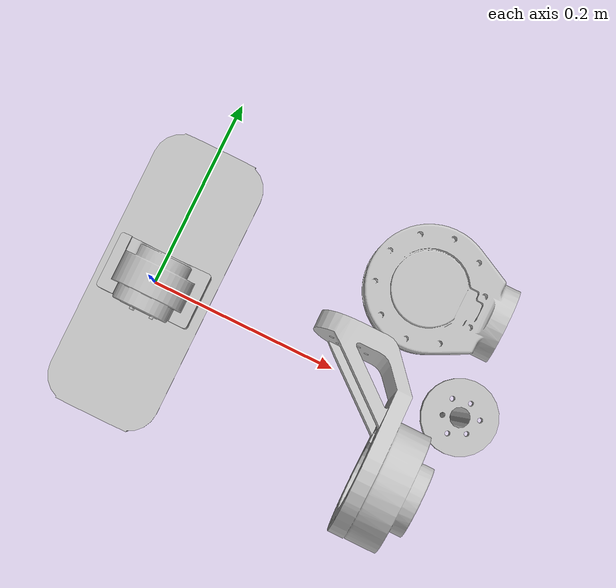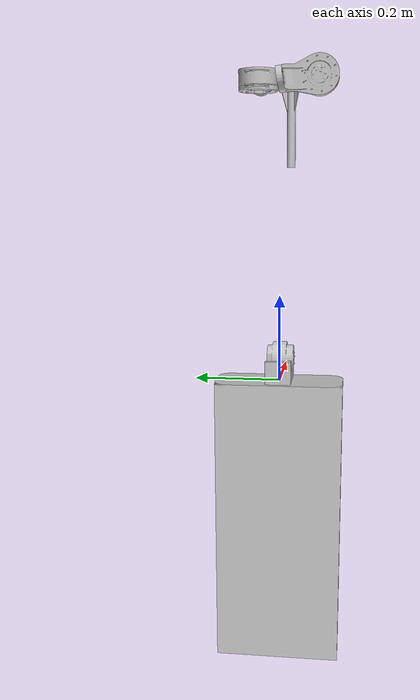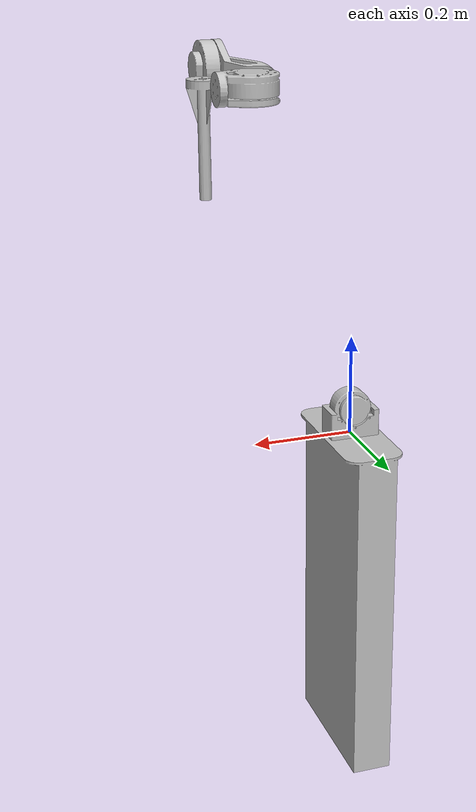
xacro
<?xml version="1.0" encoding="utf-8"?>
<robot xmlns:xacro="http://www.ros.org/wiki/xacro"  name="robot">
  <link
    name="base_link">
    <visual>
      <origin
        xyz="0 0 0"
        rpy="0 0 0" />
      <geometry>
        <mesh
          filename="package://gf3_description/meshes/base_link.STL" />
      </geometry>
      <material
        name="">
        <color
          rgba="0.75294 0.75294 0.75294 1" />
      </material>
    </visual>
    <collision>
      <origin
        xyz="0 0 0"
        rpy="0 0 0" />
      <geometry>
        <mesh
          filename="package://gf3_description/meshes/base_link.STL" />
      </geometry>
    </collision>
  </link>
  <link
    name="shoulder_1">
    <visual>
      <origin
        xyz="0 0 0"
        rpy="0 0 0" />
      <geometry>
        <mesh
          filename="package://gf3_description/meshes/shoulder_1.STL" />
      </geometry>
      <material
        name="">
        <color
          rgba="0.752941176470588 0.752941176470588 0.752941176470588 1" />
      </material>
    </visual>
    <collision>
      <origin
        xyz="0 0 0"
        rpy="0 0 0" />
      <geometry>
        <mesh
          filename="package://gf3_description/meshes/shoulder_1.STL" />
      </geometry>
    </collision>
  </link>
  <joint
    name="base_link_shoulder_1"
    type="fixed">
    <origin
      xyz="0 0 0"
      rpy="0 0 0" />
    <parent
      link="base_link" />
    <child
      link="shoulder_1" />
    <axis
      xyz="0 0 0" />
  </joint>
  <link
    name="shoulder_2">
    <inertial>
      <origin
        xyz="-0.00935681252853031 0.079150572505589 -0.0597717888530282"
        rpy="0 0 0" />
      <mass
        value="0.402167431900124" />
      <inertia
        ixx="0.000681722421314581"
        ixy="2.94723633624945E-05"
        ixz="-2.53719087675482E-06"
        iyy="0.000446003101679024"
        iyz="0.000188270353164379"
        izz="0.000665910291514535" />
    </inertial>
    <visual>
      <origin
        xyz="0 0 0"
        rpy="0 0 0" />
      <geometry>
        <mesh
          filename="package://gf3_description/meshes/shoulder_2.STL" />
      </geometry>
      <material
        name="">
        <color
          rgba="0.752941176470588 0.752941176470588 0.752941176470588 1" />
      </material>
    </visual>
    <collision>
      <origin
        xyz="0 0 0"
        rpy="0 0 0" />
      <geometry>
        <mesh
          filename="package://gf3_description/meshes/shoulder_2.STL" />
      </geometry>
    </collision>
  </link>
  <joint
    name="shoulder_1_shoulder_2"
    type="continuous">
    <origin
      xyz="0.186 0.025012 0.7024"
      rpy="0 1.4155 -1.5708" />
    <parent
      link="shoulder_1" />
    <child
      link="shoulder_2" />
    <axis
      xyz="0 1 0" />
  </joint>
  <link
    name="shoulder_3">
    <inertial>
      <origin
        xyz="-0.0269092135761492 0.0640846252957541 -1.53289660409506E-08"
        rpy="0 0 0" />
      <mass
        value="0.370585135046895" />
      <inertia
        ixx="0.000523354390280425"
        ixy="6.02723287451794E-05"
        ixz="-9.62981343736503E-11"
        iyy="0.000290540478475071"
        iyz="-7.2434133454519E-11"
        izz="0.00040667010432906" />
    </inertial>
    <visual>
      <origin
        xyz="0 0 0"
        rpy="0 0 0" />
      <geometry>
        <mesh
          filename="package://gf3_description/meshes/shoulder_3.STL" />
      </geometry>
      <material
        name="">
        <color
          rgba="0.752941176470588 0.752941176470588 0.752941176470588 1" />
      </material>
    </visual>
    <collision>
      <origin
        xyz="0 0 0"
        rpy="0 0 0" />
      <geometry>
        <mesh
          filename="package://gf3_description/meshes/shoulder_3.STL" />
      </geometry>
    </collision>
  </link>
  <joint
    name="shoulder_2_shoulder_3"
    type="continuous">
    <origin
      xyz="-0.007733 0.1005 -0.049398"
      rpy="1.5708 0.15528 0" />
    <parent
      link="shoulder_2" />
    <child
      link="shoulder_3" />
    <axis
      xyz="0 1 0" />
  </joint>
  <link
    name="upper_arm">
    <inertial>
      <origin
        xyz="-2.88566393003009E-12 -0.0579636903882207 1.1743425676336E-11"
        rpy="0 0 0" />
      <mass
        value="0.079380694983881" />
      <inertia
        ixx="0.000349386865286372"
        ixy="1.01029048780009E-14"
        ixz="-3.89234678559516E-15"
        iyy="2.37717514500075E-05"
        iyz="-2.72966992972112E-14"
        izz="0.00034938686529665" />
    </inertial>
    <visual>
      <origin
        xyz="0 0 0"
        rpy="0 0 0" />
      <geometry>
        <mesh
          filename="package://gf3_description/meshes/upper_arm.STL" />
      </geometry>
      <material
        name="">
        <color
          rgba="0.752941176470588 0.752941176470588 0.752941176470588 1" />
      </material>
    </visual>
    <collision>
      <origin
        xyz="0 0 0"
        rpy="0 0 0" />
      <geometry>
        <mesh
          filename="package://gf3_description/meshes/upper_arm.STL" />
      </geometry>
    </collision>
  </link>
  <joint
    name="shoulder_3_upper_arm"
    type="continuous">
    <origin
      xyz="-0.0075 0.077 0"
      rpy="-3.1416 -0.30797 -1.5708" />
    <parent
      link="shoulder_3" />
    <child
      link="upper_arm" />
    <axis
      xyz="0 -1 0" />
  </joint>
</robot>
